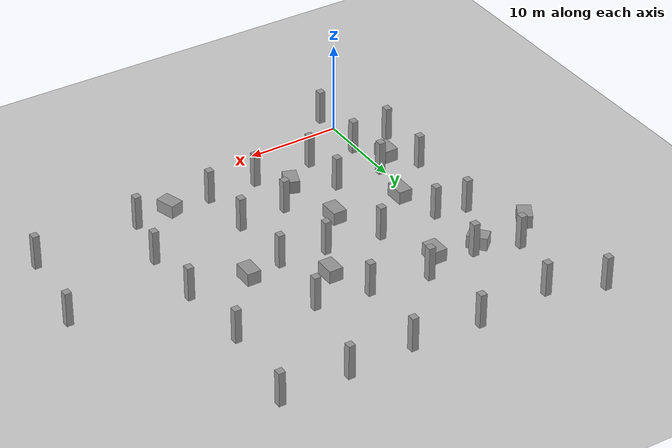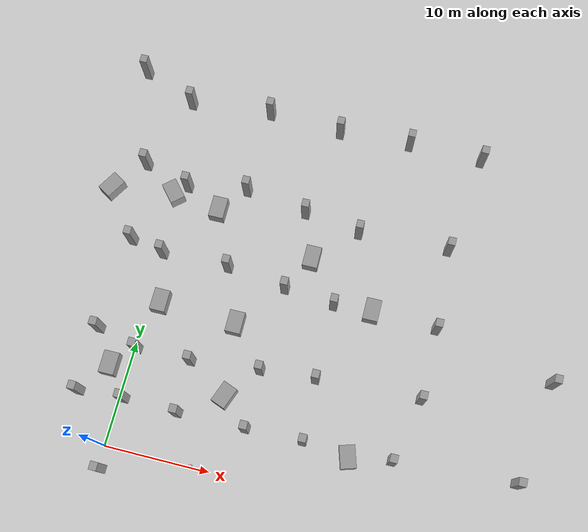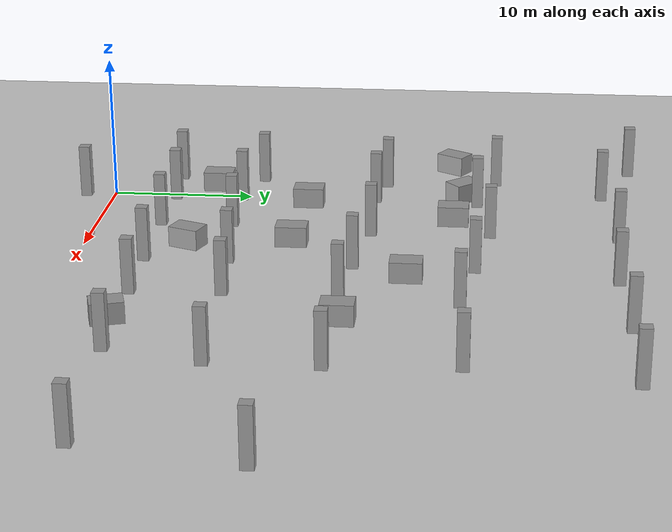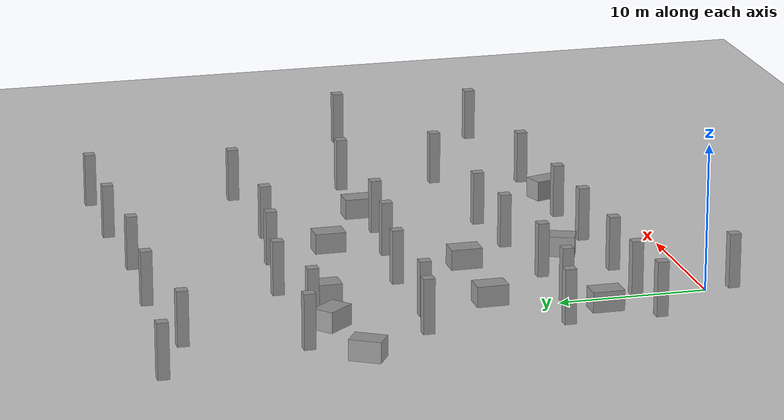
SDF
<sdf version="1.6">
 <world name="default">
  <model name="ground_plane">
   <static>1</static>
   <link name="link">
    <collision name="collision">
     <geometry><plane><normal>0 0 1</normal><size>100 100</size></plane></geometry>
     <surface><friction><ode><mu>100</mu><mu2>50</mu2></ode></friction></surface>
    </collision>
    <visual name="visual">
     <cast_shadows>0</cast_shadows>
     <geometry><plane><normal>0 0 1</normal><size>100 100</size></plane></geometry>
     <material>
      <script><uri>file://media/materials/scripts/gazebo.material</uri><name>Gazebo/Grey</name></script>
     </material>
    </visual>
    <velocity_decay><linear>0</linear><angular>0</angular></velocity_decay>
   </link>
  </model>
  <model name="unit_cylinder_15">
   <link name="link">
    <inertial>
     <mass>1</mass>
     <inertia><ixx>0.145833</ixx><ixy>0</ixy><ixz>0</ixz><iyy>0.145833</iyy><iyz>0</iyz><izz>0.125</izz></inertia>
    </inertial>
    <visual name="visual">
     <geometry><cylinder><radius>0.175793</radius><length>0.211077</length></cylinder></geometry>
     <material>
      <script><name>Gazebo/Grey</name><uri>file://media/materials/scripts/gazebo.material</uri></script>
      <ambient>1 0.3 0.3 1</ambient>
      <diffuse>1 0.7 0.7 1</diffuse>
      <specular>1 0.01 0.01 1</specular>
      <emissive>1 0 0 1</emissive>
      <shader type="vertex"><normal_map>__default__</normal_map></shader>
     </material>
    </visual>
    <collision name="collision">
     <geometry><cylinder><radius>0.175793</radius><length>0.211077</length></cylinder></geometry>
     <surface>
      <friction>
       <ode><mu>1</mu><mu2>1</mu2><fdir1>0 0 0</fdir1><slip1>0</slip1><slip2>0</slip2></ode>
       <torsional>
        <coefficient>1</coefficient>
        <patch_radius>0</patch_radius>
        <surface_radius>0</surface_radius>
        <use_patch_radius>1</use_patch_radius>
        <ode><slip>0</slip></ode>
       </torsional>
      </friction>
      <bounce><restitution_coefficient>0</restitution_coefficient><threshold>1e+06</threshold></bounce>
      <contact>
       <collide_without_contact>0</collide_without_contact>
       <collide_without_contact_bitmask>1</collide_without_contact_bitmask>
       <collide_bitmask>1</collide_bitmask>
       <ode>
        <soft_cfm>0</soft_cfm>
        <soft_erp>0.2</soft_erp>
        <kp>1e+13</kp>
        <kd>1</kd>
        <max_vel>0.01</max_vel>
        <min_depth>0</min_depth>
       </ode>
       <bullet>
        <split_impulse>1</split_impulse>
        <split_impulse_penetration_threshold>-0.01</split_impulse_penetration_threshold>
        <soft_cfm>0</soft_cfm>
        <soft_erp>0.2</soft_erp>
        <kp>1e+13</kp>
        <kd>1</kd>
       </bullet>
      </contact>
     </surface>
    </collision>
   </link>
   <static>0</static>
   <pose>8.1781 0.118835 0.105537 2e-06 -2e-06 2e-06</pose>
  </model>
  <model name="unit_box_0">
   <pose>0.552724 4.62357 1.85358 0 -0 0.000533</pose>
   <link name="link">
    <inertial>
     <mass>1</mass>
     <inertia>
      <ixx>0.166667</ixx>
      <ixy>0</ixy>
      <ixz>0</ixz>
      <iyy>0.166667</iyy>
      <iyz>0</iyz>
      <izz>0.166667</izz>
     </inertia>
    </inertial>
    <collision name="collision"><geometry><box><size>0.721478 0.765781 3.70717</size></box></geometry></collision>
    <visual name="visual">
     <geometry><box><size>0.721478 0.765781 3.70717</size></box></geometry>
     <material>
      <script><name>Gazebo/Grey</name><uri>file://media/materials/scripts/gazebo.material</uri></script>
     </material>
    </visual>
   </link>
  </model>
  <model name="unit_box_0_clone">
   <pose>5.76783 4.51377 1.85358 0 -1e-06 0.000702</pose>
   <link name="link">
    <inertial>
     <mass>1</mass>
     <inertia>
      <ixx>0.166667</ixx>
      <ixy>0</ixy>
      <ixz>0</ixz>
      <iyy>0.166667</iyy>
      <iyz>0</iyz>
      <izz>0.166667</izz>
     </inertia>
    </inertial>
    <collision name="collision"><geometry><box><size>0.721478 0.765781 3.70716</size></box></geometry></collision>
    <visual name="visual">
     <geometry><box><size>0.721478 0.765781 3.70716</size></box></geometry>
     <material>
      <script><name>Gazebo/Grey</name><uri>file://media/materials/scripts/gazebo.material</uri></script>
     </material>
    </visual>
   </link>
  </model>
  <model name="unit_box_0_clone_0">
   <pose>5.62538 9.50107 1.85358 0 -0 0.000481</pose>
   <link name="link">
    <inertial>
     <mass>1</mass>
     <inertia>
      <ixx>0.166667</ixx>
      <ixy>0</ixy>
      <ixz>0</ixz>
      <iyy>0.166667</iyy>
      <iyz>0</iyz>
      <izz>0.166667</izz>
     </inertia>
    </inertial>
    <collision name="collision"><geometry><box><size>0.721478 0.765781 3.70716</size></box></geometry></collision>
    <visual name="visual">
     <geometry><box><size>0.721478 0.765781 3.70716</size></box></geometry>
     <material>
      <script><name>Gazebo/Grey</name><uri>file://media/materials/scripts/gazebo.material</uri></script>
     </material>
    </visual>
   </link>
  </model>
  <model name="unit_box_0_clone_1">
   <pose>0.355195 9.43736 1.85358 0 -0 0.000772</pose>
   <link name="link">
    <inertial>
     <mass>1</mass>
     <inertia>
      <ixx>0.166667</ixx>
      <ixy>0</ixy>
      <ixz>0</ixz>
      <iyy>0.166667</iyy>
      <iyz>0</iyz>
      <izz>0.166667</izz>
     </inertia>
    </inertial>
    <collision name="collision"><geometry><box><size>0.721478 0.765781 3.70716</size></box></geometry></collision>
    <visual name="visual">
     <geometry><box><size>0.721478 0.765781 3.70716</size></box></geometry>
     <material>
      <script><name>Gazebo/Grey</name><uri>file://media/materials/scripts/gazebo.material</uri></script>
     </material>
    </visual>
   </link>
  </model>
  <model name="unit_box_0_clone_2">
   <pose>12.285 4.61126 1.85358 0 -0 0.000734</pose>
   <link name="link">
    <inertial>
     <mass>1</mass>
     <inertia>
      <ixx>0.166667</ixx>
      <ixy>0</ixy>
      <ixz>0</ixz>
      <iyy>0.166667</iyy>
      <iyz>0</iyz>
      <izz>0.166667</izz>
     </inertia>
    </inertial>
    <collision name="collision"><geometry><box><size>0.721478 0.765781 3.70716</size></box></geometry></collision>
    <visual name="visual">
     <geometry><box><size>0.721478 0.765781 3.70716</size></box></geometry>
     <material>
      <script><name>Gazebo/Grey</name><uri>file://media/materials/scripts/gazebo.material</uri></script>
     </material>
    </visual>
   </link>
  </model>
  <model name="unit_box_0_clone_3">
   <pose>12.2177 10.1964 1.85358 -1e-06 -0 0.000389</pose>
   <link name="link">
    <inertial>
     <mass>1</mass>
     <inertia>
      <ixx>0.166667</ixx>
      <ixy>0</ixy>
      <ixz>0</ixz>
      <iyy>0.166667</iyy>
      <iyz>0</iyz>
      <izz>0.166667</izz>
     </inertia>
    </inertial>
    <collision name="collision"><geometry><box><size>0.721478 0.765781 3.70716</size></box></geometry></collision>
    <visual name="visual">
     <geometry><box><size>0.721478 0.765781 3.70716</size></box></geometry>
     <material>
      <script><name>Gazebo/Grey</name><uri>file://media/materials/scripts/gazebo.material</uri></script>
     </material>
    </visual>
   </link>
  </model>
  <model name="unit_box_0_clone_6">
   <pose>0.383086 -2.03146 1.85358 1e-06 -0 0.000583</pose>
   <link name="link">
    <inertial>
     <mass>1</mass>
     <inertia>
      <ixx>0.166667</ixx>
      <ixy>0</ixy>
      <ixz>0</ixz>
      <iyy>0.166667</iyy>
      <iyz>0</iyz>
      <izz>0.166667</izz>
     </inertia>
    </inertial>
    <collision name="collision"><geometry><box><size>0.721478 0.765781 3.70716</size></box></geometry></collision>
    <visual name="visual">
     <geometry><box><size>0.721478 0.765781 3.70716</size></box></geometry>
     <material>
      <script><name>Gazebo/Grey</name><uri>file://media/materials/scripts/gazebo.material</uri></script>
     </material>
    </visual>
   </link>
  </model>
  <model name="unit_box_0_clone_10">
   <pose>17.7042 4.76854 1.85358 -0 -1e-06 0.000558</pose>
   <link name="link">
    <inertial>
     <mass>1</mass>
     <inertia>
      <ixx>0.166667</ixx>
      <ixy>0</ixy>
      <ixz>0</ixz>
      <iyy>0.166667</iyy>
      <iyz>0</iyz>
      <izz>0.166667</izz>
     </inertia>
    </inertial>
    <collision name="collision"><geometry><box><size>0.721478 0.765781 3.70716</size></box></geometry></collision>
    <visual name="visual">
     <geometry><box><size>0.721478 0.765781 3.70716</size></box></geometry>
     <material>
      <script><name>Gazebo/Grey</name><uri>file://media/materials/scripts/gazebo.material</uri></script>
     </material>
    </visual>
   </link>
  </model>
  <model name="unit_box_0_clone_13">
   <pose>17.4733 10.6295 1.85358 0 -0 0.000525</pose>
   <link name="link">
    <inertial>
     <mass>1</mass>
     <inertia>
      <ixx>0.166667</ixx>
      <ixy>0</ixy>
      <ixz>0</ixz>
      <iyy>0.166667</iyy>
      <iyz>0</iyz>
      <izz>0.166667</izz>
     </inertia>
    </inertial>
    <collision name="collision"><geometry><box><size>0.721478 0.765781 3.70716</size></box></geometry></collision>
    <visual name="visual">
     <geometry><box><size>0.721478 0.765781 3.70716</size></box></geometry>
     <material>
      <script><name>Gazebo/Grey</name><uri>file://media/materials/scripts/gazebo.material</uri></script>
     </material>
    </visual>
   </link>
  </model>
  <model name="unit_box_0_clone_14">
   <pose>17.4477 17.9556 1.85358 0 1e-06 0.000406</pose>
   <link name="link">
    <inertial>
     <mass>1</mass>
     <inertia>
      <ixx>0.166667</ixx>
      <ixy>0</ixy>
      <ixz>0</ixz>
      <iyy>0.166667</iyy>
      <iyz>0</iyz>
      <izz>0.166667</izz>
     </inertia>
    </inertial>
    <collision name="collision"><geometry><box><size>0.721478 0.765781 3.70716</size></box></geometry></collision>
    <visual name="visual">
     <geometry><box><size>0.721478 0.765781 3.70716</size></box></geometry>
     <material>
      <script><name>Gazebo/Grey</name><uri>file://media/materials/scripts/gazebo.material</uri></script>
     </material>
    </visual>
   </link>
  </model>
  <model name="unit_box_0_clone_15">
   <pose>12.5152 18.4395 1.85358 -1e-06 -0 0.000385</pose>
   <link name="link">
    <inertial>
     <mass>1</mass>
     <inertia>
      <ixx>0.166667</ixx>
      <ixy>0</ixy>
      <ixz>0</ixz>
      <iyy>0.166667</iyy>
      <iyz>0</iyz>
      <izz>0.166667</izz>
     </inertia>
    </inertial>
    <collision name="collision"><geometry><box><size>0.721478 0.765781 3.70716</size></box></geometry></collision>
    <visual name="visual">
     <geometry><box><size>0.721478 0.765781 3.70716</size></box></geometry>
     <material>
      <script><name>Gazebo/Grey</name><uri>file://media/materials/scripts/gazebo.material</uri></script>
     </material>
    </visual>
   </link>
  </model>
  <model name="unit_box_0_clone_16">
   <pose>6.631 19.1983 1.85358 0 -0 0.000638</pose>
   <link name="link">
    <inertial>
     <mass>1</mass>
     <inertia>
      <ixx>0.166667</ixx>
      <ixy>0</ixy>
      <ixz>0</ixz>
      <iyy>0.166667</iyy>
      <iyz>0</iyz>
      <izz>0.166667</izz>
     </inertia>
    </inertial>
    <collision name="collision"><geometry><box><size>0.721478 0.765781 3.70716</size></box></geometry></collision>
    <visual name="visual">
     <geometry><box><size>0.721478 0.765781 3.70716</size></box></geometry>
     <material>
      <script><name>Gazebo/Grey</name><uri>file://media/materials/scripts/gazebo.material</uri></script>
     </material>
    </visual>
   </link>
  </model>
  <model name="unit_box_0_clone_17">
   <pose>0.089127 19.0632 1.85358 0 -0 0.000226</pose>
   <link name="link">
    <inertial>
     <mass>1</mass>
     <inertia>
      <ixx>0.166667</ixx>
      <ixy>0</ixy>
      <ixz>0</ixz>
      <iyy>0.166667</iyy>
      <iyz>0</iyz>
      <izz>0.166667</izz>
     </inertia>
    </inertial>
    <collision name="collision"><geometry><box><size>0.721478 0.765781 3.70716</size></box></geometry></collision>
    <visual name="visual">
     <geometry><box><size>0.721478 0.765781 3.70716</size></box></geometry>
     <material>
      <script><name>Gazebo/Grey</name><uri>file://media/materials/scripts/gazebo.material</uri></script>
     </material>
    </visual>
   </link>
  </model>
  <model name="unit_box_0_clone_18">
   <pose>18.1486 25.5936 1.85358 0 1e-06 0.000392</pose>
   <link name="link">
    <inertial>
     <mass>1</mass>
     <inertia>
      <ixx>0.166667</ixx>
      <ixy>0</ixy>
      <ixz>0</ixz>
      <iyy>0.166667</iyy>
      <iyz>0</iyz>
      <izz>0.166667</izz>
     </inertia>
    </inertial>
    <collision name="collision"><geometry><box><size>0.721478 0.765781 3.70716</size></box></geometry></collision>
    <visual name="visual">
     <geometry><box><size>0.721478 0.765781 3.70716</size></box></geometry>
     <material>
      <script><name>Gazebo/Grey</name><uri>file://media/materials/scripts/gazebo.material</uri></script>
     </material>
    </visual>
   </link>
  </model>
  <model name="unit_box_0_clone_19">
   <pose>12.5778 26.4061 1.85358 0 -0 0.000368</pose>
   <link name="link">
    <inertial>
     <mass>1</mass>
     <inertia>
      <ixx>0.166667</ixx>
      <ixy>0</ixy>
      <ixz>0</ixz>
      <iyy>0.166667</iyy>
      <iyz>0</iyz>
      <izz>0.166667</izz>
     </inertia>
    </inertial>
    <collision name="collision"><geometry><box><size>0.721478 0.765781 3.70716</size></box></geometry></collision>
    <visual name="visual">
     <geometry><box><size>0.721478 0.765781 3.70716</size></box></geometry>
     <material>
      <script><name>Gazebo/Grey</name><uri>file://media/materials/scripts/gazebo.material</uri></script>
     </material>
    </visual>
   </link>
  </model>
  <model name="unit_box_0_clone_20">
   <pose>6.38944 27.3213 1.85358 0 -0 0.00041</pose>
   <link name="link">
    <inertial>
     <mass>1</mass>
     <inertia>
      <ixx>0.166667</ixx>
      <ixy>0</ixy>
      <ixz>0</ixz>
      <iyy>0.166667</iyy>
      <iyz>0</iyz>
      <izz>0.166667</izz>
     </inertia>
    </inertial>
    <collision name="collision"><geometry><box><size>0.721478 0.765781 3.70716</size></box></geometry></collision>
    <visual name="visual">
     <geometry><box><size>0.721478 0.765781 3.70716</size></box></geometry>
     <material>
      <script><name>Gazebo/Grey</name><uri>file://media/materials/scripts/gazebo.material</uri></script>
     </material>
    </visual>
   </link>
  </model>
  <model name="unit_box_0_clone_21">
   <pose>0.542146 26.3372 1.85358 -1e-06 0 0.000363</pose>
   <link name="link">
    <inertial>
     <mass>1</mass>
     <inertia>
      <ixx>0.166667</ixx>
      <ixy>0</ixy>
      <ixz>0</ixz>
      <iyy>0.166667</iyy>
      <iyz>0</iyz>
      <izz>0.166667</izz>
     </inertia>
    </inertial>
    <collision name="collision"><geometry><box><size>0.721478 0.765781 3.70716</size></box></geometry></collision>
    <visual name="visual">
     <geometry><box><size>0.721478 0.765781 3.70716</size></box></geometry>
     <material>
      <script><name>Gazebo/Grey</name><uri>file://media/materials/scripts/gazebo.material</uri></script>
     </material>
    </visual>
   </link>
  </model>
  <model name="unit_box_0_clone_28">
   <pose>-3.75851 4.34526 1.85358 -1e-06 0 0.000588</pose>
   <link name="link">
    <inertial>
     <mass>1</mass>
     <inertia>
      <ixx>0.166667</ixx>
      <ixy>0</ixy>
      <ixz>0</ixz>
      <iyy>0.166667</iyy>
      <iyz>0</iyz>
      <izz>0.166667</izz>
     </inertia>
    </inertial>
    <collision name="collision"><geometry><box><size>0.721478 0.765781 3.70716</size></box></geometry></collision>
    <visual name="visual">
     <geometry><box><size>0.721478 0.765781 3.70716</size></box></geometry>
     <material>
      <script><name>Gazebo/Grey</name><uri>file://media/materials/scripts/gazebo.material</uri></script>
     </material>
    </visual>
   </link>
  </model>
  <model name="unit_box_0_clone_29">
   <pose>-3.69631 10.4945 1.85358 0 -0 0.000566</pose>
   <link name="link">
    <inertial>
     <mass>1</mass>
     <inertia>
      <ixx>0.166667</ixx>
      <ixy>0</ixy>
      <ixz>0</ixz>
      <iyy>0.166667</iyy>
      <iyz>0</iyz>
      <izz>0.166667</izz>
     </inertia>
    </inertial>
    <collision name="collision"><geometry><box><size>0.721478 0.765781 3.70716</size></box></geometry></collision>
    <visual name="visual">
     <geometry><box><size>0.721478 0.765781 3.70716</size></box></geometry>
     <material>
      <script><name>Gazebo/Grey</name><uri>file://media/materials/scripts/gazebo.material</uri></script>
     </material>
    </visual>
   </link>
  </model>
  <model name="unit_box_0_clone_31">
   <pose>-3.21677 19.7035 1.85358 0 -0 0.000511</pose>
   <link name="link">
    <inertial>
     <mass>1</mass>
     <inertia>
      <ixx>0.166667</ixx>
      <ixy>0</ixy>
      <ixz>0</ixz>
      <iyy>0.166667</iyy>
      <iyz>0</iyz>
      <izz>0.166667</izz>
     </inertia>
    </inertial>
    <collision name="collision"><geometry><box><size>0.721478 0.765781 3.70716</size></box></geometry></collision>
    <visual name="visual">
     <geometry><box><size>0.721478 0.765781 3.70716</size></box></geometry>
     <material>
      <script><name>Gazebo/Grey</name><uri>file://media/materials/scripts/gazebo.material</uri></script>
     </material>
    </visual>
   </link>
  </model>
  <model name="unit_box_0_clone_32">
   <pose>-4.10112 27.6439 1.85358 0 -0 0.000603</pose>
   <link name="link">
    <inertial>
     <mass>1</mass>
     <inertia>
      <ixx>0.166667</ixx>
      <ixy>0</ixy>
      <ixz>0</ixz>
      <iyy>0.166667</iyy>
      <iyz>0</iyz>
      <izz>0.166667</izz>
     </inertia>
    </inertial>
    <collision name="collision"><geometry><box><size>0.721478 0.765781 3.70716</size></box></geometry></collision>
    <visual name="visual">
     <geometry><box><size>0.721478 0.765781 3.70716</size></box></geometry>
     <material>
      <script><name>Gazebo/Grey</name><uri>file://media/materials/scripts/gazebo.material</uri></script>
     </material>
    </visual>
   </link>
  </model>
  <model name="unit_box_0_clone_55">
   <pose>26.0272 4.96489 1.85358 0 1e-06 0.000497</pose>
   <link name="link">
    <inertial>
     <mass>1</mass>
     <inertia>
      <ixx>0.166667</ixx>
      <ixy>0</ixy>
      <ixz>0</ixz>
      <iyy>0.166667</iyy>
      <iyz>0</iyz>
      <izz>0.166667</izz>
     </inertia>
    </inertial>
    <collision name="collision"><geometry><box><size>0.721478 0.765781 3.70716</size></box></geometry></collision>
    <visual name="visual">
     <geometry><box><size>0.721478 0.765781 3.70716</size></box></geometry>
     <material>
      <script><name>Gazebo/Grey</name><uri>file://media/materials/scripts/gazebo.material</uri></script>
     </material>
    </visual>
   </link>
  </model>
  <model name="unit_box_0_clone_56">
   <pose>27.4274 11.1026 1.85358 1e-06 0 0.000368</pose>
   <link name="link">
    <inertial>
     <mass>1</mass>
     <inertia>
      <ixx>0.166667</ixx>
      <ixy>0</ixy>
      <ixz>0</ixz>
      <iyy>0.166667</iyy>
      <iyz>0</iyz>
      <izz>0.166667</izz>
     </inertia>
    </inertial>
    <collision name="collision"><geometry><box><size>0.721478 0.765781 3.70716</size></box></geometry></collision>
    <visual name="visual">
     <geometry><box><size>0.721478 0.765781 3.70716</size></box></geometry>
     <material>
      <script><name>Gazebo/Grey</name><uri>file://media/materials/scripts/gazebo.material</uri></script>
     </material>
    </visual>
   </link>
  </model>
  <model name="unit_box_0_clone_57">
   <pose>27.4539 17.9819 1.85358 0 -1e-06 0.000394</pose>
   <link name="link">
    <inertial>
     <mass>1</mass>
     <inertia>
      <ixx>0.166667</ixx>
      <ixy>0</ixy>
      <ixz>0</ixz>
      <iyy>0.166667</iyy>
      <iyz>0</iyz>
      <izz>0.166667</izz>
     </inertia>
    </inertial>
    <collision name="collision"><geometry><box><size>0.721478 0.765781 3.70716</size></box></geometry></collision>
    <visual name="visual">
     <geometry><box><size>0.721478 0.765781 3.70716</size></box></geometry>
     <material>
      <script><name>Gazebo/Grey</name><uri>file://media/materials/scripts/gazebo.material</uri></script>
     </material>
    </visual>
   </link>
  </model>
  <model name="unit_box_0_clone_60">
   <pose>27 25.9999 1.85358 0 -0 0.000634</pose>
   <link name="link">
    <inertial>
     <mass>1</mass>
     <inertia>
      <ixx>0.166667</ixx>
      <ixy>0</ixy>
      <ixz>0</ixz>
      <iyy>0.166667</iyy>
      <iyz>0</iyz>
      <izz>0.166667</izz>
     </inertia>
    </inertial>
    <collision name="collision"><geometry><box><size>0.721478 0.765781 3.70716</size></box></geometry></collision>
    <visual name="visual">
     <geometry><box><size>0.721478 0.765781 3.70716</size></box></geometry>
     <material>
      <script><name>Gazebo/Grey</name><uri>file://media/materials/scripts/gazebo.material</uri></script>
     </material>
    </visual>
   </link>
  </model>
  <model name="unit_box_0_clone_88">
   <pose>28.3386 35.994 1.85358 0 1e-06 0.000636</pose>
   <link name="link">
    <inertial>
     <mass>1</mass>
     <inertia>
      <ixx>0.166667</ixx>
      <ixy>0</ixy>
      <ixz>0</ixz>
      <iyy>0.166667</iyy>
      <iyz>0</iyz>
      <izz>0.166667</izz>
     </inertia>
    </inertial>
    <collision name="collision"><geometry><box><size>0.721478 0.765781 3.70716</size></box></geometry></collision>
    <visual name="visual">
     <geometry><box><size>0.721478 0.765781 3.70716</size></box></geometry>
     <material>
      <script><name>Gazebo/Grey</name><uri>file://media/materials/scripts/gazebo.material</uri></script>
     </material>
    </visual>
   </link>
  </model>
  <model name="unit_box_0_clone_89">
   <pose>20.9997 36.0003 1.85358 0 1e-06 0.000555</pose>
   <link name="link">
    <inertial>
     <mass>1</mass>
     <inertia>
      <ixx>0.166667</ixx>
      <ixy>0</ixy>
      <ixz>0</ixz>
      <iyy>0.166667</iyy>
      <iyz>0</iyz>
      <izz>0.166667</izz>
     </inertia>
    </inertial>
    <collision name="collision"><geometry><box><size>0.721478 0.765781 3.70716</size></box></geometry></collision>
    <visual name="visual">
     <geometry><box><size>0.721478 0.765781 3.70716</size></box></geometry>
     <material>
      <script><name>Gazebo/Grey</name><uri>file://media/materials/scripts/gazebo.material</uri></script>
     </material>
    </visual>
   </link>
  </model>
  <model name="unit_box_0_clone_90">
   <pose>13.8872 35.6357 1.85358 -0 -1e-06 0.000761</pose>
   <link name="link">
    <inertial>
     <mass>1</mass>
     <inertia>
      <ixx>0.166667</ixx>
      <ixy>0</ixy>
      <ixz>0</ixz>
      <iyy>0.166667</iyy>
      <iyz>0</iyz>
      <izz>0.166667</izz>
     </inertia>
    </inertial>
    <collision name="collision"><geometry><box><size>0.721478 0.765781 3.70716</size></box></geometry></collision>
    <visual name="visual">
     <geometry><box><size>0.721478 0.765781 3.70716</size></box></geometry>
     <material>
      <script><name>Gazebo/Grey</name><uri>file://media/materials/scripts/gazebo.material</uri></script>
     </material>
    </visual>
   </link>
  </model>
  <model name="unit_box_0_clone_91">
   <pose>6.55472 36 1.85358 0 -0 0.000462</pose>
   <link name="link">
    <inertial>
     <mass>1</mass>
     <inertia>
      <ixx>0.166667</ixx>
      <ixy>0</ixy>
      <ixz>0</ixz>
      <iyy>0.166667</iyy>
      <iyz>0</iyz>
      <izz>0.166667</izz>
     </inertia>
    </inertial>
    <collision name="collision"><geometry><box><size>0.721478 0.765781 3.70716</size></box></geometry></collision>
    <visual name="visual">
     <geometry><box><size>0.721478 0.765781 3.70716</size></box></geometry>
     <material>
      <script><name>Gazebo/Grey</name><uri>file://media/materials/scripts/gazebo.material</uri></script>
     </material>
    </visual>
   </link>
  </model>
  <model name="unit_box_0_clone_92">
   <pose>-1.57195 35.2155 1.85358 -1e-06 -1e-06 0.000635</pose>
   <link name="link">
    <inertial>
     <mass>1</mass>
     <inertia>
      <ixx>0.166667</ixx>
      <ixy>0</ixy>
      <ixz>0</ixz>
      <iyy>0.166667</iyy>
      <iyz>0</iyz>
      <izz>0.166667</izz>
     </inertia>
    </inertial>
    <collision name="collision"><geometry><box><size>0.721478 0.765781 3.70716</size></box></geometry></collision>
    <visual name="visual">
     <geometry><box><size>0.721478 0.765781 3.70716</size></box></geometry>
     <material>
      <script><name>Gazebo/Grey</name><uri>file://media/materials/scripts/gazebo.material</uri></script>
     </material>
    </visual>
   </link>
  </model>
  <model name="unit_box_0_clone_93">
   <pose>-6.99967 37.4886 1.85358 0 -1e-06 0.000906</pose>
   <link name="link">
    <inertial>
     <mass>1</mass>
     <inertia>
      <ixx>0.166667</ixx>
      <ixy>0</ixy>
      <ixz>0</ixz>
      <iyy>0.166667</iyy>
      <iyz>0</iyz>
      <izz>0.166667</izz>
     </inertia>
    </inertial>
    <collision name="collision"><geometry><box><size>0.721478 0.765781 3.70716</size></box></geometry></collision>
    <visual name="visual">
     <geometry><box><size>0.721478 0.765781 3.70716</size></box></geometry>
     <material>
      <script><name>Gazebo/Grey</name><uri>file://media/materials/scripts/gazebo.material</uri></script>
     </material>
    </visual>
   </link>
  </model>
  <model name="unit_box_0_clone_99">
   <pose>37.4583 5.69907 1.85358 0 -0 0.000596</pose>
   <link name="link">
    <inertial>
     <mass>1</mass>
     <inertia>
      <ixx>0.166667</ixx>
      <ixy>0</ixy>
      <ixz>0</ixz>
      <iyy>0.166667</iyy>
      <iyz>0</iyz>
      <izz>0.166667</izz>
     </inertia>
    </inertial>
    <collision name="collision"><geometry><box><size>0.721478 0.765781 3.70716</size></box></geometry></collision>
    <visual name="visual">
     <geometry><box><size>0.721478 0.765781 3.70716</size></box></geometry>
     <material>
      <script><name>Gazebo/Grey</name><uri>file://media/materials/scripts/gazebo.material</uri></script>
     </material>
    </visual>
   </link>
  </model>
  <model name="unit_box_0_clone_100">
   <pose>38.9999 15.4751 1.85358 -1e-06 0 0.00073</pose>
   <link name="link">
    <inertial>
     <mass>1</mass>
     <inertia>
      <ixx>0.166667</ixx>
      <ixy>0</ixy>
      <ixz>0</ixz>
      <iyy>0.166667</iyy>
      <iyz>0</iyz>
      <izz>0.166667</izz>
     </inertia>
    </inertial>
    <collision name="collision"><geometry><box><size>0.721478 0.765781 3.70716</size></box></geometry></collision>
    <visual name="visual">
     <geometry><box><size>0.721478 0.765781 3.70716</size></box></geometry>
     <material>
      <script><name>Gazebo/Grey</name><uri>file://media/materials/scripts/gazebo.material</uri></script>
     </material>
    </visual>
   </link>
  </model>
  <model name="unit_box_1_clone">
   <pose>-1.68033 7.40041 0.701095 0 6e-06 1.9e-05</pose>
   <link name="link">
    <inertial>
     <mass>1</mass>
     <inertia>
      <ixx>0.166667</ixx>
      <ixy>0</ixy>
      <ixz>0</ixz>
      <iyy>0.166667</iyy>
      <iyz>0</iyz>
      <izz>0.166667</izz>
     </inertia>
    </inertial>
    <collision name="collision"><geometry><box><size>1.47892 2.13104 1.4022</size></box></geometry></collision>
    <visual name="visual">
     <geometry><box><size>1.47892 2.13104 1.4022</size></box></geometry>
     <material>
      <script><name>Gazebo/Grey</name><uri>file://media/materials/scripts/gazebo.material</uri></script>
     </material>
    </visual>
   </link>
  </model>
  <model name="unit_box_1_clone_0">
   <pose>1.20636 14.3386 0.701095 0 -6e-06 1.9e-05</pose>
   <link name="link">
    <inertial>
     <mass>1</mass>
     <inertia>
      <ixx>0.166667</ixx>
      <ixy>0</ixy>
      <ixz>0</ixz>
      <iyy>0.166667</iyy>
      <iyz>0</iyz>
      <izz>0.166667</izz>
     </inertia>
    </inertial>
    <collision name="collision"><geometry><box><size>1.47892 2.13104 1.4022</size></box></geometry></collision>
    <visual name="visual">
     <geometry><box><size>1.47892 2.13104 1.4022</size></box></geometry>
     <material>
      <script><name>Gazebo/Grey</name><uri>file://media/materials/scripts/gazebo.material</uri></script>
     </material>
    </visual>
   </link>
  </model>
  <model name="unit_box_1_clone_1">
   <pose>8.7506 13.9931 0.7011 0 -0 1.9e-05</pose>
   <link name="link">
    <inertial>
     <mass>1</mass>
     <inertia>
      <ixx>0.166667</ixx>
      <ixy>0</ixy>
      <ixz>0</ixz>
      <iyy>0.166667</iyy>
      <iyz>0</iyz>
      <izz>0.166667</izz>
     </inertia>
    </inertial>
    <collision name="collision"><geometry><box><size>1.47892 2.13104 1.4022</size></box></geometry></collision>
    <visual name="visual">
     <geometry><box><size>1.47892 2.13104 1.4022</size></box></geometry>
     <material>
      <script><name>Gazebo/Grey</name><uri>file://media/materials/scripts/gazebo.material</uri></script>
     </material>
    </visual>
   </link>
  </model>
  <model name="unit_box_1_clone_2">
   <pose>9.59552 7.06212 0.701095 5e-06 -0 -0.360378</pose>
   <link name="link">
    <inertial>
     <mass>1</mass>
     <inertia>
      <ixx>0.166667</ixx>
      <ixy>0</ixy>
      <ixz>0</ixz>
      <iyy>0.166667</iyy>
      <iyz>0</iyz>
      <izz>0.166667</izz>
     </inertia>
    </inertial>
    <collision name="collision"><geometry><box><size>1.47892 2.13104 1.4022</size></box></geometry></collision>
    <visual name="visual">
     <geometry><box><size>1.47892 2.13104 1.4022</size></box></geometry>
     <material>
      <script><name>Gazebo/Grey</name><uri>file://media/materials/scripts/gazebo.material</uri></script>
     </material>
    </visual>
   </link>
  </model>
  <model name="unit_box_1_clone_4">
   <pose>-0.677335 25.3223 0.7011 0 -0 0.716663</pose>
   <link name="link">
    <inertial>
     <mass>1</mass>
     <inertia>
      <ixx>0.166667</ixx>
      <ixy>0</ixy>
      <ixz>0</ixz>
      <iyy>0.166667</iyy>
      <iyz>0</iyz>
      <izz>0.166667</izz>
     </inertia>
    </inertial>
    <collision name="collision"><geometry><box><size>1.47892 2.13104 1.4022</size></box></geometry></collision>
    <visual name="visual">
     <geometry><box><size>1.47892 2.13104 1.4022</size></box></geometry>
     <material>
      <script><name>Gazebo/Grey</name><uri>file://media/materials/scripts/gazebo.material</uri></script>
     </material>
    </visual>
   </link>
  </model>
  <model name="unit_box_1_clone_5">
   <pose>-6.79675 24.5042 0.701095 -4e-06 -0 -0.53702</pose>
   <link name="link">
    <inertial>
     <mass>1</mass>
     <inertia>
      <ixx>0.166667</ixx>
      <ixy>0</ixy>
      <ixz>0</ixz>
      <iyy>0.166667</iyy>
      <iyz>0</iyz>
      <izz>0.166667</izz>
     </inertia>
    </inertial>
    <collision name="collision"><geometry><box><size>1.47892 2.13104 1.4022</size></box></geometry></collision>
    <visual name="visual">
     <geometry><box><size>1.47892 2.13104 1.4022</size></box></geometry>
     <material>
      <script><name>Gazebo/Grey</name><uri>file://media/materials/scripts/gazebo.material</uri></script>
     </material>
    </visual>
   </link>
  </model>
  <model name="unit_box_1_clone_14">
   <pose>22.0333 4.33271 0.7011 0 -0 0.297904</pose>
   <link name="link">
    <inertial>
     <mass>1</mass>
     <inertia>
      <ixx>0.166667</ixx>
      <ixy>0</ixy>
      <ixz>0</ixz>
      <iyy>0.166667</iyy>
      <iyz>0</iyz>
      <izz>0.166667</izz>
     </inertia>
    </inertial>
    <collision name="collision"><geometry><box><size>1.47892 2.13104 1.4022</size></box></geometry></collision>
    <visual name="visual">
     <geometry><box><size>1.47892 2.13104 1.4022</size></box></geometry>
     <material>
      <script><name>Gazebo/Grey</name><uri>file://media/materials/scripts/gazebo.material</uri></script>
     </material>
    </visual>
   </link>
  </model>
  <model name="unit_box_1_clone_15">
   <pose>4.09515 24.7349 0.7011 0 -0 1.9e-05</pose>
   <link name="link">
    <inertial>
     <mass>1</mass>
     <inertia>
      <ixx>0.166667</ixx>
      <ixy>0</ixy>
      <ixz>0</ixz>
      <iyy>0.166667</iyy>
      <iyz>0</iyz>
      <izz>0.166667</izz>
     </inertia>
    </inertial>
    <collision name="collision"><geometry><box><size>1.47892 2.13104 1.4022</size></box></geometry></collision>
    <visual name="visual">
     <geometry><box><size>1.47892 2.13104 1.4022</size></box></geometry>
     <material>
      <script><name>Gazebo/Grey</name><uri>file://media/materials/scripts/gazebo.material</uri></script>
     </material>
    </visual>
   </link>
  </model>
  <model name="unit_box_1_clone_16">
   <pose>14.276 22.0285 0.701095 0 6e-06 1.9e-05</pose>
   <link name="link">
    <inertial>
     <mass>1</mass>
     <inertia>
      <ixx>0.166667</ixx>
      <ixy>0</ixy>
      <ixz>0</ixz>
      <iyy>0.166667</iyy>
      <iyz>0</iyz>
      <izz>0.166667</izz>
     </inertia>
    </inertial>
    <collision name="collision"><geometry><box><size>1.47892 2.13104 1.4022</size></box></geometry></collision>
    <visual name="visual">
     <geometry><box><size>1.47892 2.13104 1.4022</size></box></geometry>
     <material>
      <script><name>Gazebo/Grey</name><uri>file://media/materials/scripts/gazebo.material</uri></script>
     </material>
    </visual>
   </link>
  </model>
  <model name="unit_box_1_clone_17">
   <pose>21.1297 18.2783 0.701095 0 6e-06 1.9e-05</pose>
   <link name="link">
    <inertial>
     <mass>1</mass>
     <inertia>
      <ixx>0.166667</ixx>
      <ixy>0</ixy>
      <ixz>0</ixz>
      <iyy>0.166667</iyy>
      <iyz>0</iyz>
      <izz>0.166667</izz>
     </inertia>
    </inertial>
    <collision name="collision"><geometry><box><size>1.47892 2.13104 1.4022</size></box></geometry></collision>
    <visual name="visual">
     <geometry><box><size>1.47892 2.13104 1.4022</size></box></geometry>
     <material>
      <script><name>Gazebo/Grey</name><uri>file://media/materials/scripts/gazebo.material</uri></script>
     </material>
    </visual>
   </link>
  </model>
 </world>
</sdf>
